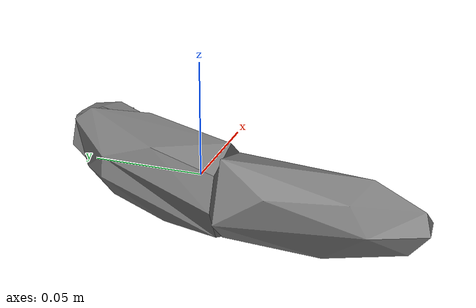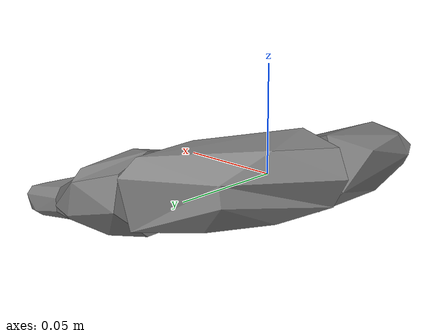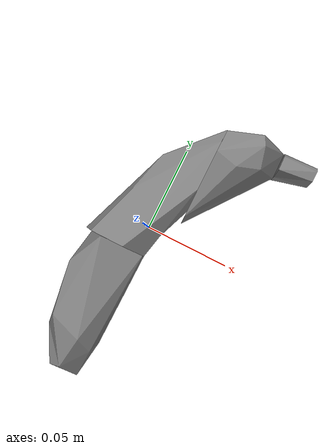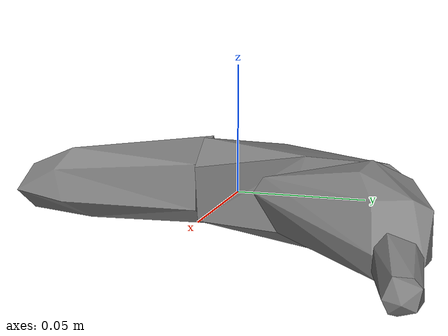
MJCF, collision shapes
<mujoco model="banana">
  <compiler angle="radian" />

  <asset>
    <mesh name="banana_visual_mesh" file="banana/textured.obj" />
    <mesh name="banana_collision_mesh_0" file="banana/textured_coacd_0.stl" />
    <mesh name="banana_collision_mesh_1" file="banana/textured_coacd_1.stl" />
    <mesh name="banana_collision_mesh_2" file="banana/textured_coacd_2.stl" />
    <mesh name="banana_collision_mesh_3" file="banana/textured_coacd_3.stl" />
    <texture name="banana_texture" type="2d" file="banana/texture_map.png" />
    <material name="banana_material" texture="banana_texture" />
  </asset>

  <worldbody>
    <body name="banana" pos="0 0 0" euler="0 0 0">
      <freejoint name="banana_joint" />
      <geom name="banana_visual_geom" type="mesh" mesh="banana_visual_mesh" material="banana_material" pos="0.009936102440002158 -0.004072679186328214 -0.01712688923116843" euler="0 0 0" contype="0" conaffinity="0" group="0" />
      <geom name="banana_collision_geom_0" type="mesh" mesh="banana_collision_mesh_0" pos="0.009936102440002158 -0.004072679186328214 -0.01712688923116843" euler="0 0 0" contype="1" conaffinity="1" group="3" />
      <geom name="banana_collision_geom_1" type="mesh" mesh="banana_collision_mesh_1" pos="0.009936102440002158 -0.004072679186328214 -0.01712688923116843" euler="0 0 0" contype="1" conaffinity="1" group="3" />
      <geom name="banana_collision_geom_2" type="mesh" mesh="banana_collision_mesh_2" pos="0.009936102440002158 -0.004072679186328214 -0.01712688923116843" euler="0 0 0" contype="1" conaffinity="1" group="3" />
      <geom name="banana_collision_geom_3" type="mesh" mesh="banana_collision_mesh_3" pos="0.009936102440002158 -0.004072679186328214 -0.01712688923116843" euler="0 0 0" contype="1" conaffinity="1" group="3" />
      <inertial pos="0 0 0" euler="0 0 0" mass="0.066" diaginertia="0.001 0.001 0.001" />
    </body>
  </worldbody>
</mujoco>
